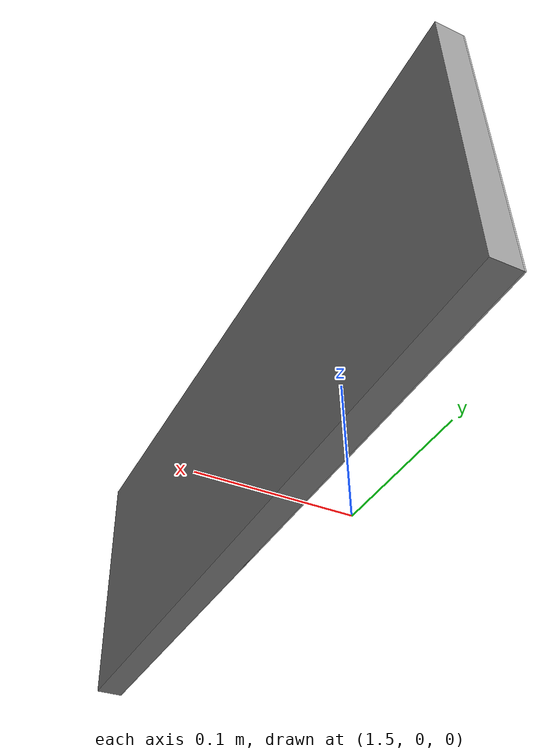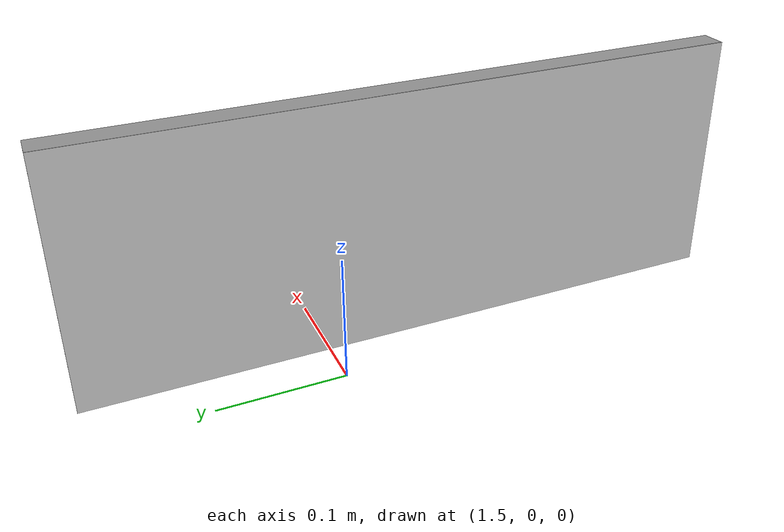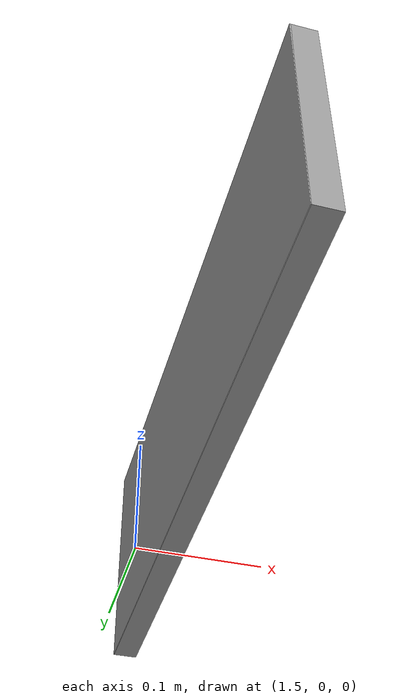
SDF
<?xml version='1.0'?>
<sdf version='1.7'>
  <model name='2'>
    <static>true</static>

    <pose>1.532500 -0.071383 0.110338 0 0 3.141593</pose>

    <link name='link_0'>
      <pose>0 0 0 0 0 0</pose>

      <visual name='visual'>
        <geometry>
          <box>
            <size>0.019959 0.522549 0.197075</size>
          </box>
        </geometry>
        <material>
          <script>
            <uri>file://media/materials/scripts/gazebo.material</uri>
            <name>Gazebo/Grey</name>
          </script>
        </material>
      </visual>

      <visual name='signboard_visual'>
        <pose>0.01 0 0 0 0 0</pose>
        <geometry>
          <box>
            <size>0.001 0.522549 0.197075</size>
          </box>
        </geometry>
        <material>
          <script>
            <uri>model://2/materials/scripts</uri>
            <uri>model://2/materials/textures</uri>
            <name>Model_2/Texture</name>
          </script>
        </material>
      </visual>
    </link>
    <allow_auto_disable>1</allow_auto_disable>
  </model>
</sdf>
